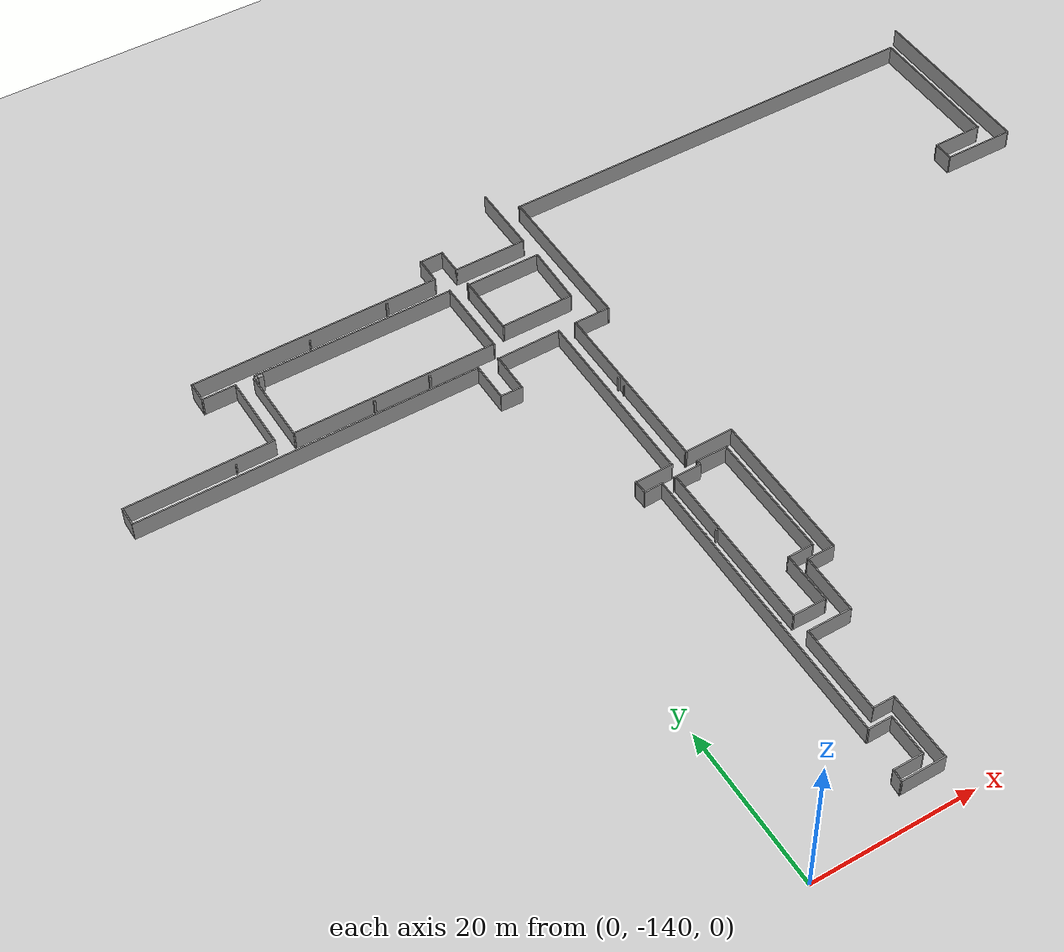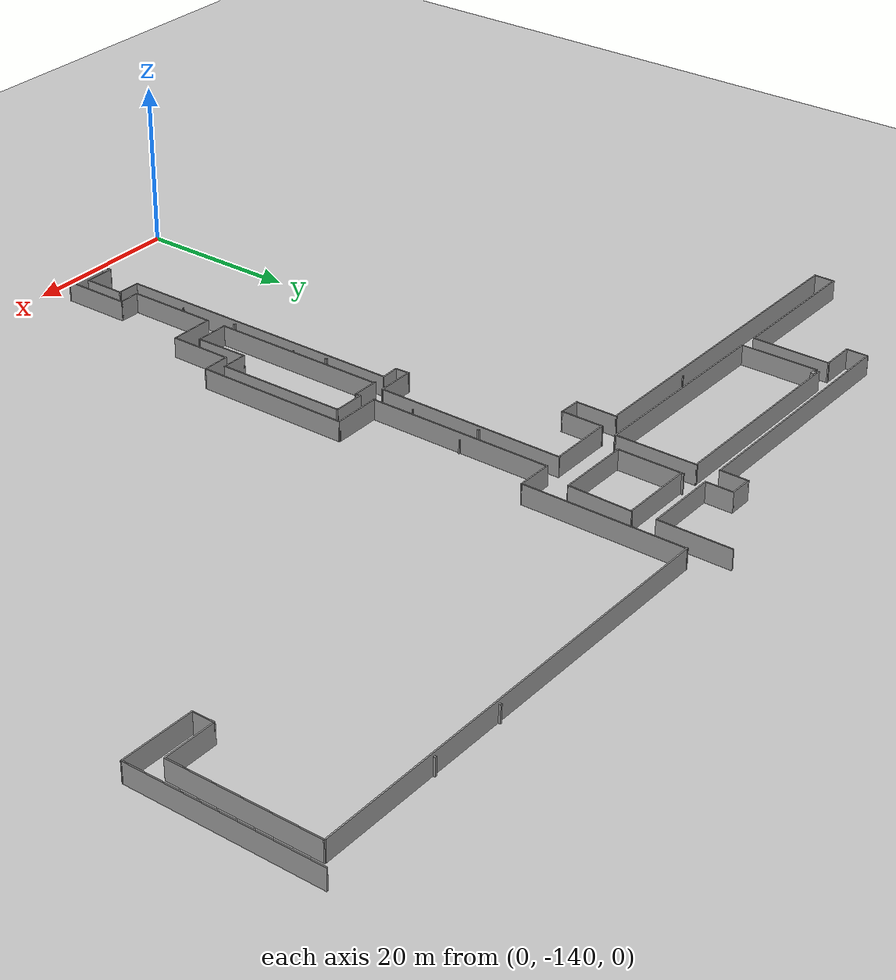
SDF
<sdf version="1.6">
 <world name="default">
  <model name="ground_plane">
   <static>1</static>
   <link name="link">
    <collision name="collision">
     <geometry><plane><normal>0 0 1</normal><size>100 100</size></plane></geometry>
     <surface><friction><ode><mu>100</mu><mu2>50</mu2></ode></friction></surface>
    </collision>
    <visual name="visual">
     <cast_shadows>0</cast_shadows>
     <geometry><plane><normal>0 0 1</normal><size>100 100</size></plane></geometry>
     <material>
      <script><uri>file://media/materials/scripts/gazebo.material</uri><name>Gazebo/Grey</name></script>
     </material>
    </visual>
   </link>
  </model>
  <model name="CMU">
   <pose>62.2844 43.535 0 0 -0 0</pose>
   <link name="Wall_233">
    <collision name="Wall_233_Collision">
     <geometry><box><size>23 0.15 2.5</size></box></geometry>
     <pose>0 0 1.25 0 -0 0</pose>
    </collision>
    <visual name="Wall_233_Visual">
     <pose>0 0 1.25 0 -0 0</pose>
     <geometry><box><size>23 0.15 2.5</size></box></geometry>
     <material>
      <script><uri>file://media/materials/scripts/gazebo.material</uri><name>Gazebo/Grey</name></script>
      <ambient>1 1 1 1</ambient>
     </material>
    </visual>
    <pose>18.6413 -100.449 0 0 0 -1.5708</pose>
   </link>
   <link name="Wall_234">
    <collision name="Wall_234_Collision">
     <geometry><box><size>9.04246 0.15 2.5</size></box></geometry>
     <pose>0 0 1.25 0 -0 0</pose>
    </collision>
    <visual name="Wall_234_Visual">
     <pose>0 0 1.25 0 -0 0</pose>
     <geometry><box><size>9.04246 0.15 2.5</size></box></geometry>
     <material>
      <script><uri>file://media/materials/scripts/gazebo.material</uri><name>Gazebo/Grey</name></script>
      <ambient>1 1 1 1</ambient>
     </material>
    </visual>
    <pose>14.1953 -111.833 0 0 -0 3.13255</pose>
   </link>
   <link name="Wall_235">
    <collision name="Wall_235_Collision">
     <geometry><box><size>2.75 0.15 2.5</size></box></geometry>
     <pose>0 0 1.25 0 -0 0</pose>
    </collision>
    <visual name="Wall_235_Visual">
     <pose>0 0 1.25 0 -0 0</pose>
     <geometry><box><size>2.75 0.15 2.5</size></box></geometry>
     <material>
      <script><uri>file://media/materials/scripts/gazebo.material</uri><name>Gazebo/Grey</name></script>
      <ambient>1 1 1 1</ambient>
     </material>
    </visual>
    <pose>9.74922 -110.493 0 0 -0 1.5708</pose>
   </link>
   <link name="Wall_236">
    <collision name="Wall_236_Collision">
     <geometry><box><size>6.5 0.15 2.5</size></box></geometry>
     <pose>0 0 1.25 0 -0 0</pose>
    </collision>
    <visual name="Wall_236_Visual">
     <pose>0 0 1.25 0 -0 0</pose>
     <geometry><box><size>6.5 0.15 2.5</size></box></geometry>
     <material>
      <script><uri>file://media/materials/scripts/gazebo.material</uri><name>Gazebo/Grey</name></script>
      <ambient>1 1 1 1</ambient>
     </material>
    </visual>
    <pose>12.9242 -109.193 0 0 -0 0</pose>
   </link>
   <link name="Wall_237">
    <collision name="Wall_237_Collision">
     <geometry><box><size>18 0.15 2.5</size></box></geometry>
     <pose>0 0 1.25 0 -0 0</pose>
    </collision>
    <visual name="Wall_237_Visual">
     <pose>0 0 1.25 0 -0 0</pose>
     <geometry><box><size>18 0.15 2.5</size></box></geometry>
     <material>
      <script><uri>file://media/materials/scripts/gazebo.material</uri><name>Gazebo/Grey</name></script>
      <ambient>1 1 1 1</ambient>
     </material>
    </visual>
    <pose>16.0992 -100.268 0 0 -0 1.5708</pose>
   </link>
   <link name="Wall_238">
    <collision name="Wall_238_Collision">
     <geometry><box><size>55.5 0.15 2.5</size></box></geometry>
     <pose>0 0 1.25 0 -0 0</pose>
    </collision>
    <visual name="Wall_238_Visual">
     <pose>0 0 1.25 0 -0 0</pose>
     <geometry><box><size>55.5 0.15 2.5</size></box></geometry>
     <material>
      <script><uri>file://media/materials/scripts/gazebo.material</uri><name>Gazebo/Grey</name></script>
      <ambient>1 1 1 1</ambient>
     </material>
    </visual>
    <pose>-11.5758 -91.3431 0 0 -0 3.14159</pose>
   </link>
   <link name="Wall_239">
    <collision name="Wall_239_Collision">
     <geometry><box><size>20 0.15 2.5</size></box></geometry>
     <pose>0 0 1.25 0 -0 0</pose>
    </collision>
    <visual name="Wall_239_Visual">
     <pose>0 0 1.25 0 -0 0</pose>
     <geometry><box><size>20 0.15 2.5</size></box></geometry>
     <material>
      <script><uri>file://media/materials/scripts/gazebo.material</uri><name>Gazebo/Grey</name></script>
      <ambient>1 1 1 1</ambient>
     </material>
    </visual>
    <pose>-39.1893 -101.268 0 0 0 -1.5708</pose>
   </link>
   <link name="Wall_240">
    <collision name="Wall_240_Collision">
     <geometry><box><size>4.6231 0.15 2.5</size></box></geometry>
     <pose>0 0 1.25 0 -0 0</pose>
    </collision>
    <visual name="Wall_240_Visual">
     <pose>0 0 1.25 0 -0 0</pose>
     <geometry><box><size>4.6231 0.15 2.5</size></box></geometry>
     <material>
      <script><uri>file://media/materials/scripts/gazebo.material</uri><name>Gazebo/Grey</name></script>
      <ambient>1 1 1 1</ambient>
     </material>
    </visual>
    <pose>-41.4258 -111.183 0 0 -0 3.13725</pose>
   </link>
   <link name="Wall_241">
    <collision name="Wall_241_Collision">
     <geometry><box><size>23 0.15 2.5</size></box></geometry>
     <pose>0 0 1.25 0 -0 0</pose>
    </collision>
    <visual name="Wall_241_Visual">
     <pose>0 0 1.25 0 -0 0</pose>
     <geometry><box><size>23 0.15 2.5</size></box></geometry>
     <material>
      <script><uri>file://media/materials/scripts/gazebo.material</uri><name>Gazebo/Grey</name></script>
      <ambient>1 1 1 1</ambient>
     </material>
    </visual>
    <pose>-43.6008 -122.66 0 0 0 -1.5708</pose>
   </link>
   <link name="Wall_242">
    <collision name="Wall_242_Collision">
     <geometry><box><size>6.18101 0.15 2.5</size></box></geometry>
     <pose>0 0 1.25 0 -0 0</pose>
    </collision>
    <visual name="Wall_242_Visual">
     <pose>0 0 1.25 0 -0 0</pose>
     <geometry><box><size>6.18101 0.15 2.5</size></box></geometry>
     <material>
      <script><uri>file://media/materials/scripts/gazebo.material</uri><name>Gazebo/Grey</name></script>
      <ambient>1 1 1 1</ambient>
     </material>
    </visual>
    <pose>-40.647 -133.993 0 0 -0 0.010202</pose>
   </link>
   <link name="Wall_243">
    <collision name="Wall_243_Collision">
     <geometry><box><size>19.25 0.15 2.5</size></box></geometry>
     <pose>0 0 1.25 0 -0 0</pose>
    </collision>
    <visual name="Wall_243_Visual">
     <pose>0 0 1.25 0 -0 0</pose>
     <geometry><box><size>19.25 0.15 2.5</size></box></geometry>
     <material>
      <script><uri>file://media/materials/scripts/gazebo.material</uri><name>Gazebo/Grey</name></script>
      <ambient>1 1 1 1</ambient>
     </material>
    </visual>
    <pose>-37.6316 -143.512 0 0 0 -1.5708</pose>
   </link>
   <link name="Wall_244">
    <collision name="Wall_244_Collision">
     <geometry><box><size>3.49625 0.15 2.5</size></box></geometry>
     <pose>0 0 1.25 0 -0 0</pose>
    </collision>
    <visual name="Wall_244_Visual">
     <pose>0 0 1.25 0 -0 0</pose>
     <geometry><box><size>3.49625 0.15 2.5</size></box></geometry>
     <material>
      <script><uri>file://media/materials/scripts/gazebo.material</uri><name>Gazebo/Grey</name></script>
      <ambient>1 1 1 1</ambient>
     </material>
    </visual>
    <pose>-39.3047 -153.062 0 0 -0 3.14159</pose>
   </link>
   <link name="Wall_245">
    <collision name="Wall_245_Collision">
     <geometry><box><size>7.75 0.15 2.5</size></box></geometry>
     <pose>0 0 1.25 0 -0 0</pose>
    </collision>
    <visual name="Wall_245_Visual">
     <pose>0 0 1.25 0 -0 0</pose>
     <geometry><box><size>7.75 0.15 2.5</size></box></geometry>
     <material>
      <script><uri>file://media/materials/scripts/gazebo.material</uri><name>Gazebo/Grey</name></script>
      <ambient>1 1 1 1</ambient>
     </material>
    </visual>
    <pose>-40.9427 -156.862 0 0 0 -1.5708</pose>
   </link>
   <link name="Wall_246">
    <collision name="Wall_246_Collision">
     <geometry><box><size>5.50375 0.15 2.5</size></box></geometry>
     <pose>0 0 1.25 0 -0 0</pose>
    </collision>
    <visual name="Wall_246_Visual">
     <pose>0 0 1.25 0 -0 0</pose>
     <geometry><box><size>5.50375 0.15 2.5</size></box></geometry>
     <material>
      <script><uri>file://media/materials/scripts/gazebo.material</uri><name>Gazebo/Grey</name></script>
      <ambient>1 1 1 1</ambient>
     </material>
    </visual>
    <pose>-43.6547 -160.662 0 0 -0 3.14159</pose>
   </link>
   <link name="Wall_247">
    <collision name="Wall_247_Collision">
     <geometry><box><size>11.25 0.15 2.5</size></box></geometry>
     <pose>0 0 1.25 0 -0 0</pose>
    </collision>
    <visual name="Wall_247_Visual">
     <pose>0 0 1.25 0 -0 0</pose>
     <geometry><box><size>11.25 0.15 2.5</size></box></geometry>
     <material>
      <script><uri>file://media/materials/scripts/gazebo.material</uri><name>Gazebo/Grey</name></script>
      <ambient>1 1 1 1</ambient>
     </material>
    </visual>
    <pose>-46.3316 -166.212 0 0 0 -1.5708</pose>
   </link>
   <link name="Wall_248">
    <collision name="Wall_248_Collision">
     <geometry><box><size>2.75 0.15 2.5</size></box></geometry>
     <pose>0 0 1.25 0 -0 0</pose>
    </collision>
    <visual name="Wall_248_Visual">
     <pose>0 0 1.25 0 -0 0</pose>
     <geometry><box><size>2.75 0.15 2.5</size></box></geometry>
     <material>
      <script><uri>file://media/materials/scripts/gazebo.material</uri><name>Gazebo/Grey</name></script>
      <ambient>1 1 1 1</ambient>
     </material>
    </visual>
    <pose>-45.0316 -171.762 0 0 -0 0</pose>
   </link>
   <link name="Wall_249">
    <collision name="Wall_249_Collision">
     <geometry><box><size>8.5 0.15 2.5</size></box></geometry>
     <pose>0 0 1.25 0 -0 0</pose>
    </collision>
    <visual name="Wall_249_Visual">
     <pose>0 0 1.25 0 -0 0</pose>
     <geometry><box><size>8.5 0.15 2.5</size></box></geometry>
     <material>
      <script><uri>file://media/materials/scripts/gazebo.material</uri><name>Gazebo/Grey</name></script>
      <ambient>1 1 1 1</ambient>
     </material>
    </visual>
    <pose>-43.7316 -175.937 0 0 0 -1.5708</pose>
   </link>
   <link name="Wall_250">
    <collision name="Wall_250_Collision">
     <geometry><box><size>5.5 0.15 2.5</size></box></geometry>
     <pose>0 0 1.25 0 -0 0</pose>
    </collision>
    <visual name="Wall_250_Visual">
     <pose>0 0 1.25 0 -0 0</pose>
     <geometry><box><size>5.5 0.15 2.5</size></box></geometry>
     <material>
      <script><uri>file://media/materials/scripts/gazebo.material</uri><name>Gazebo/Grey</name></script>
      <ambient>1 1 1 1</ambient>
     </material>
    </visual>
    <pose>-46.4066 -180.112 0 0 -0 3.14159</pose>
   </link>
   <link name="Wall_251">
    <collision name="Wall_251_Collision">
     <geometry><box><size>1.62148 0.15 2.5</size></box></geometry>
     <pose>0 0 1.25 0 -0 0</pose>
    </collision>
    <visual name="Wall_251_Visual">
     <pose>0 0 1.25 0 -0 0</pose>
     <geometry><box><size>1.62148 0.15 2.5</size></box></geometry>
     <material>
      <script><uri>file://media/materials/scripts/gazebo.material</uri><name>Gazebo/Grey</name></script>
      <ambient>1 1 1 1</ambient>
     </material>
    </visual>
    <pose>-49.0245 -179.379 0 0 -0 1.49314</pose>
   </link>
   <link name="Wall_252">
    <collision name="Wall_252_Collision">
     <geometry><box><size>3.75 0.15 2.5</size></box></geometry>
     <pose>0 0 1.25 0 -0 0</pose>
    </collision>
    <visual name="Wall_252_Visual">
     <pose>0 0 1.25 0 -0 0</pose>
     <geometry><box><size>3.75 0.15 2.5</size></box></geometry>
     <material>
      <script><uri>file://media/materials/scripts/gazebo.material</uri><name>Gazebo/Grey</name></script>
      <ambient>1 1 1 1</ambient>
     </material>
    </visual>
    <pose>-47.1675 -178.645 0 0 -0 0</pose>
   </link>
   <link name="Wall_253">
    <collision name="Wall_253_Collision">
     <geometry><box><size>5.25 0.15 2.5</size></box></geometry>
     <pose>0 0 1.25 0 -0 0</pose>
    </collision>
    <visual name="Wall_253_Visual">
     <pose>0 0 1.25 0 -0 0</pose>
     <geometry><box><size>5.25 0.15 2.5</size></box></geometry>
     <material>
      <script><uri>file://media/materials/scripts/gazebo.material</uri><name>Gazebo/Grey</name></script>
      <ambient>1 1 1 1</ambient>
     </material>
    </visual>
    <pose>-45.3675 -176.095 0 0 -0 1.5708</pose>
   </link>
   <link name="Wall_254">
    <collision name="Wall_254_Collision">
     <geometry><box><size>3 0.15 2.5</size></box></geometry>
     <pose>0 0 1.25 0 -0 0</pose>
    </collision>
    <visual name="Wall_254_Visual">
     <pose>0 0 1.25 0 -0 0</pose>
     <geometry><box><size>3 0.15 2.5</size></box></geometry>
     <material>
      <script><uri>file://media/materials/scripts/gazebo.material</uri><name>Gazebo/Grey</name></script>
      <ambient>1 1 1 1</ambient>
     </material>
    </visual>
    <pose>-46.7925 -173.545 0 0 -0 3.14159</pose>
   </link>
   <link name="Wall_255">
    <collision name="Wall_255_Collision">
     <geometry><box><size>37.3541 0.15 2.5</size></box></geometry>
     <pose>0 0 1.25 0 -0 0</pose>
    </collision>
    <visual name="Wall_255_Visual">
     <pose>0 0 1.25 0 -0 0</pose>
     <geometry><box><size>37.3541 0.15 2.5</size></box></geometry>
     <material>
      <script><uri>file://media/materials/scripts/gazebo.material</uri><name>Gazebo/Grey</name></script>
      <ambient>1 1 1 1</ambient>
     </material>
    </visual>
    <pose>-48.231 -154.943 0 0 -0 1.57153</pose>
   </link>
   <link name="Wall_256">
    <collision name="Wall_256_Collision">
     <geometry><box><size>2.44902 0.15 2.5</size></box></geometry>
     <pose>0 0 1.25 0 -0 0</pose>
    </collision>
    <visual name="Wall_256_Visual">
     <pose>0 0 1.25 0 -0 0</pose>
     <geometry><box><size>2.44902 0.15 2.5</size></box></geometry>
     <material>
      <script><uri>file://media/materials/scripts/gazebo.material</uri><name>Gazebo/Grey</name></script>
      <ambient>1 1 1 1</ambient>
     </material>
    </visual>
    <pose>-49.3525 -136.392 0 0 0 -3.09722</pose>
   </link>
   <link name="Wall_257">
    <collision name="Wall_257_Collision">
     <geometry><box><size>1.8321 0.15 2.5</size></box></geometry>
     <pose>0 0 1.25 0 -0 0</pose>
    </collision>
    <visual name="Wall_257_Visual">
     <pose>0 0 1.25 0 -0 0</pose>
     <geometry><box><size>1.8321 0.15 2.5</size></box></geometry>
     <material>
      <script><uri>file://media/materials/scripts/gazebo.material</uri><name>Gazebo/Grey</name></script>
      <ambient>1 1 1 1</ambient>
     </material>
    </visual>
    <pose>-50.5317 -135.541 0 0 -0 1.60738</pose>
   </link>
   <link name="Wall_258">
    <collision name="Wall_258_Collision">
     <geometry><box><size>4.83138 0.15 2.5</size></box></geometry>
     <pose>0 0 1.25 0 -0 0</pose>
    </collision>
    <visual name="Wall_258_Visual">
     <pose>0 0 1.25 0 -0 0</pose>
     <geometry><box><size>4.83138 0.15 2.5</size></box></geometry>
     <material>
      <script><uri>file://media/materials/scripts/gazebo.material</uri><name>Gazebo/Grey</name></script>
      <ambient>1 1 1 1</ambient>
     </material>
    </visual>
    <pose>-48.222 -134.731 0 0 -0 0.013143</pose>
   </link>
   <link name="Wall_259">
    <collision name="Wall_259_Collision">
     <geometry><box><size>23.6154 0.15 2.5</size></box></geometry>
     <pose>0 0 1.25 0 -0 0</pose>
    </collision>
    <visual name="Wall_259_Visual">
     <pose>0 0 1.25 0 -0 0</pose>
     <geometry><box><size>23.6154 0.15 2.5</size></box></geometry>
     <material>
      <script><uri>file://media/materials/scripts/gazebo.material</uri><name>Gazebo/Grey</name></script>
      <ambient>1 1 1 1</ambient>
     </material>
    </visual>
    <pose>-45.9122 -122.968 0 0 -0 1.56817</pose>
   </link>
   <link name="Wall_260">
    <collision name="Wall_260_Collision">
     <geometry><box><size>8.0851 0.15 2.5</size></box></geometry>
     <pose>0 0 1.25 0 -0 0</pose>
    </collision>
    <visual name="Wall_260_Visual">
     <pose>0 0 1.25 0 -0 0</pose>
     <geometry><box><size>8.0851 0.15 2.5</size></box></geometry>
     <material>
      <script><uri>file://media/materials/scripts/gazebo.material</uri><name>Gazebo/Grey</name></script>
      <ambient>1 1 1 1</ambient>
     </material>
    </visual>
    <pose>-49.9104 -111.266 0 0 0 -3.13384</pose>
   </link>
   <link name="Wall_261">
    <collision name="Wall_261_Collision">
     <geometry><box><size>5.25 0.15 2.5</size></box></geometry>
     <pose>0 0 1.25 0 -0 0</pose>
    </collision>
    <visual name="Wall_261_Visual">
     <pose>0 0 1.25 0 -0 0</pose>
     <geometry><box><size>5.25 0.15 2.5</size></box></geometry>
     <material>
      <script><uri>file://media/materials/scripts/gazebo.material</uri><name>Gazebo/Grey</name></script>
      <ambient>1 1 1 1</ambient>
     </material>
    </visual>
    <pose>-53.8779 -113.785 0 0 0 -1.5708</pose>
   </link>
   <link name="Wall_262">
    <collision name="Wall_262_Collision">
     <geometry><box><size>2.80058 0.15 2.5</size></box></geometry>
     <pose>0 0 1.25 0 -0 0</pose>
    </collision>
    <visual name="Wall_262_Visual">
     <pose>0 0 1.25 0 -0 0</pose>
     <geometry><box><size>2.80058 0.15 2.5</size></box></geometry>
     <material>
      <script><uri>file://media/materials/scripts/gazebo.material</uri><name>Gazebo/Grey</name></script>
      <ambient>1 1 1 1</ambient>
     </material>
    </visual>
    <pose>-55.2028 -116.366 0 0 -0 3.11838</pose>
   </link>
   <link name="Wall_263">
    <collision name="Wall_263_Collision">
     <geometry><box><size>5.1807 0.15 2.5</size></box></geometry>
     <pose>0 0 1.25 0 -0 0</pose>
    </collision>
    <visual name="Wall_263_Visual">
     <pose>0 0 1.25 0 -0 0</pose>
     <geometry><box><size>5.1807 0.15 2.5</size></box></geometry>
     <material>
      <script><uri>file://media/materials/scripts/gazebo.material</uri><name>Gazebo/Grey</name></script>
      <ambient>1 1 1 1</ambient>
     </material>
    </visual>
    <pose>-56.5277 -113.758 0 0 -0 1.5708</pose>
   </link>
   <link name="Wall_264">
    <collision name="Wall_264_Collision">
     <geometry><box><size>42.5039 0.15 2.5</size></box></geometry>
     <pose>0 0 1.25 0 -0 0</pose>
    </collision>
    <visual name="Wall_264_Visual">
     <pose>0 0 1.25 0 -0 0</pose>
     <geometry><box><size>42.5039 0.15 2.5</size></box></geometry>
     <material>
      <script><uri>file://media/materials/scripts/gazebo.material</uri><name>Gazebo/Grey</name></script>
      <ambient>1 1 1 1</ambient>
     </material>
    </visual>
    <pose>-77.7047 -111.274 0 0 -0 3.14014</pose>
   </link>
   <link name="Wall_265">
    <collision name="Wall_265_Collision">
     <geometry><box><size>2.5693 0.15 2.5</size></box></geometry>
     <pose>0 0 1.25 0 -0 0</pose>
    </collision>
    <visual name="Wall_265_Visual">
     <pose>0 0 1.25 0 -0 0</pose>
     <geometry><box><size>2.5693 0.15 2.5</size></box></geometry>
     <material>
      <script><uri>file://media/materials/scripts/gazebo.material</uri><name>Gazebo/Grey</name></script>
      <ambient>1 1 1 1</ambient>
     </material>
    </visual>
    <pose>-98.8816 -109.972 0 0 -0 1.5708</pose>
   </link>
   <link name="Wall_266">
    <collision name="Wall_266_Collision">
     <geometry><box><size>18.25 0.15 2.5</size></box></geometry>
     <pose>0 0 1.25 0 -0 0</pose>
    </collision>
    <visual name="Wall_266_Visual">
     <pose>0 0 1.25 0 -0 0</pose>
     <geometry><box><size>18.25 0.15 2.5</size></box></geometry>
     <material>
      <script><uri>file://media/materials/scripts/gazebo.material</uri><name>Gazebo/Grey</name></script>
      <ambient>1 1 1 1</ambient>
     </material>
    </visual>
    <pose>-89.8316 -108.762 0 0 -0 0</pose>
   </link>
   <link name="Wall_267">
    <collision name="Wall_267_Collision">
     <geometry><box><size>9.75 0.15 2.5</size></box></geometry>
     <pose>0 0 1.25 0 -0 0</pose>
    </collision>
    <visual name="Wall_267_Visual">
     <pose>0 0 1.25 0 -0 0</pose>
     <geometry><box><size>9.75 0.15 2.5</size></box></geometry>
     <material>
      <script><uri>file://media/materials/scripts/gazebo.material</uri><name>Gazebo/Grey</name></script>
      <ambient>1 1 1 1</ambient>
     </material>
    </visual>
    <pose>-80.7816 -103.962 0 0 -0 1.5708</pose>
   </link>
   <link name="Wall_268">
    <collision name="Wall_268_Collision">
     <geometry><box><size>4.25 0.15 2.5</size></box></geometry>
     <pose>0 0 1.25 0 -0 0</pose>
    </collision>
    <visual name="Wall_268_Visual">
     <pose>0 0 1.25 0 -0 0</pose>
     <geometry><box><size>4.25 0.15 2.5</size></box></geometry>
     <material>
      <script><uri>file://media/materials/scripts/gazebo.material</uri><name>Gazebo/Grey</name></script>
      <ambient>1 1 1 1</ambient>
     </material>
    </visual>
    <pose>-82.8316 -99.1621 0 0 -0 3.14159</pose>
   </link>
   <link name="Wall_269">
    <collision name="Wall_269_Collision">
     <geometry><box><size>2.75 0.15 2.5</size></box></geometry>
     <pose>0 0 1.25 0 -0 0</pose>
    </collision>
    <visual name="Wall_269_Visual">
     <pose>0 0 1.25 0 -0 0</pose>
     <geometry><box><size>2.75 0.15 2.5</size></box></geometry>
     <material>
      <script><uri>file://media/materials/scripts/gazebo.material</uri><name>Gazebo/Grey</name></script>
      <ambient>1 1 1 1</ambient>
     </material>
    </visual>
    <pose>-84.8816 -97.8621 0 0 -0 1.5708</pose>
   </link>
   <link name="Wall_270">
    <collision name="Wall_270_Collision">
     <geometry><box><size>31.25 0.15 2.5</size></box></geometry>
     <pose>0 0 1.25 0 -0 0</pose>
    </collision>
    <visual name="Wall_270_Visual">
     <pose>0 0 1.25 0 -0 0</pose>
     <geometry><box><size>31.25 0.15 2.5</size></box></geometry>
     <material>
      <script><uri>file://media/materials/scripts/gazebo.material</uri><name>Gazebo/Grey</name></script>
      <ambient>1 1 1 1</ambient>
     </material>
    </visual>
    <pose>-69.3316 -96.5621 0 0 -0 0</pose>
   </link>
   <link name="Wall_271">
    <collision name="Wall_271_Collision">
     <geometry><box><size>3.5 0.15 2.5</size></box></geometry>
     <pose>0 0 1.25 0 -0 0</pose>
    </collision>
    <visual name="Wall_271_Visual">
     <pose>0 0 1.25 0 -0 0</pose>
     <geometry><box><size>3.5 0.15 2.5</size></box></geometry>
     <material>
      <script><uri>file://media/materials/scripts/gazebo.material</uri><name>Gazebo/Grey</name></script>
      <ambient>1 1 1 1</ambient>
     </material>
    </visual>
    <pose>-53.7816 -94.8871 0 0 -0 1.5708</pose>
   </link>
   <link name="Wall_272">
    <collision name="Wall_272_Collision">
     <geometry><box><size>3 0.15 2.5</size></box></geometry>
     <pose>0 0 1.25 0 -0 0</pose>
    </collision>
    <visual name="Wall_272_Visual">
     <pose>0 0 1.25 0 -0 0</pose>
     <geometry><box><size>3 0.15 2.5</size></box></geometry>
     <material>
      <script><uri>file://media/materials/scripts/gazebo.material</uri><name>Gazebo/Grey</name></script>
      <ambient>1 1 1 1</ambient>
     </material>
    </visual>
    <pose>-52.3566 -93.2121 0 0 -0 0</pose>
   </link>
   <link name="Wall_273">
    <collision name="Wall_273_Collision">
     <geometry><box><size>3.5 0.15 2.5</size></box></geometry>
     <pose>0 0 1.25 0 -0 0</pose>
    </collision>
    <visual name="Wall_273_Visual">
     <pose>0 0 1.25 0 -0 0</pose>
     <geometry><box><size>3.5 0.15 2.5</size></box></geometry>
     <material>
      <script><uri>file://media/materials/scripts/gazebo.material</uri><name>Gazebo/Grey</name></script>
      <ambient>1 1 1 1</ambient>
     </material>
    </visual>
    <pose>-50.9316 -94.8871 0 0 0 -1.5708</pose>
   </link>
   <link name="Wall_274">
    <collision name="Wall_274_Collision">
     <geometry><box><size>9.25 0.15 2.5</size></box></geometry>
     <pose>0 0 1.25 0 -0 0</pose>
    </collision>
    <visual name="Wall_274_Visual">
     <pose>0 0 1.25 0 -0 0</pose>
     <geometry><box><size>9.25 0.15 2.5</size></box></geometry>
     <material>
      <script><uri>file://media/materials/scripts/gazebo.material</uri><name>Gazebo/Grey</name></script>
      <ambient>1 1 1 1</ambient>
     </material>
    </visual>
    <pose>-46.3816 -96.5621 0 0 -0 0</pose>
   </link>
   <link name="Wall_275">
    <collision name="Wall_275_Collision">
     <geometry><box><size>9 0.15 2.5</size></box></geometry>
     <pose>0 0 1.25 0 -0 0</pose>
    </collision>
    <visual name="Wall_275_Visual">
     <pose>0 0 1.25 0 -0 0</pose>
     <geometry><box><size>9 0.15 2.5</size></box></geometry>
     <material>
      <script><uri>file://media/materials/scripts/gazebo.material</uri><name>Gazebo/Grey</name></script>
      <ambient>1 1 1 1</ambient>
     </material>
    </visual>
    <pose>-41.8316 -92.1371 0 0 -0 1.5708</pose>
   </link>
   <link name="Wall_277">
    <collision name="Wall_277_Collision">
     <geometry><box><size>9.74631 0.15 2.5</size></box></geometry>
     <pose>0 0 1.25 0 -0 0</pose>
    </collision>
    <visual name="Wall_277_Visual">
     <pose>0 0 1.25 0 -0 0</pose>
     <geometry><box><size>9.74631 0.15 2.5</size></box></geometry>
     <material>
      <script><uri>file://media/materials/scripts/gazebo.material</uri><name>Gazebo/Grey</name></script>
      <ambient>1 1 1 1</ambient>
     </material>
    </visual>
    <pose>-78.5714 -104.211 0 0 0 -1.56438</pose>
   </link>
   <link name="Wall_278">
    <collision name="Wall_278_Collision">
     <geometry><box><size>25.5042 0.15 2.5</size></box></geometry>
     <pose>0 0 1.25 0 -0 0</pose>
    </collision>
    <visual name="Wall_278_Visual">
     <pose>0 0 1.25 0 -0 0</pose>
     <geometry><box><size>25.5042 0.15 2.5</size></box></geometry>
     <material>
      <script><uri>file://media/materials/scripts/gazebo.material</uri><name>Gazebo/Grey</name></script>
      <ambient>1 1 1 1</ambient>
     </material>
    </visual>
    <pose>-65.8637 -109.009 0 0 0 -0.004853</pose>
   </link>
   <link name="Wall_279">
    <collision name="Wall_279_Collision">
     <geometry><box><size>10.2346 0.15 2.5</size></box></geometry>
     <pose>0 0 1.25 0 -0 0</pose>
    </collision>
    <visual name="Wall_279_Visual">
     <pose>0 0 1.25 0 -0 0</pose>
     <geometry><box><size>10.2346 0.15 2.5</size></box></geometry>
     <material>
      <script><uri>file://media/materials/scripts/gazebo.material</uri><name>Gazebo/Grey</name></script>
      <ambient>1 1 1 1</ambient>
     </material>
    </visual>
    <pose>-53.2175 -104.09 0 0 -0 1.5769</pose>
   </link>
   <link name="Wall_280">
    <collision name="Wall_280_Collision">
     <geometry><box><size>25.254 0.15 2.5</size></box></geometry>
     <pose>0 0 1.25 0 -0 0</pose>
    </collision>
    <visual name="Wall_280_Visual">
     <pose>0 0 1.25 0 -0 0</pose>
     <geometry><box><size>25.254 0.15 2.5</size></box></geometry>
     <material>
      <script><uri>file://media/materials/scripts/gazebo.material</uri><name>Gazebo/Grey</name></script>
      <ambient>1 1 1 1</ambient>
     </material>
    </visual>
    <pose>-65.8002 -99.0785 0 0 -0 3.13914</pose>
   </link>
   <link name="Wall_282">
    <collision name="Wall_282_Collision">
     <geometry><box><size>8.24222 0.15 2.5</size></box></geometry>
     <pose>0 0 1.25 0 -0 0</pose>
    </collision>
    <visual name="Wall_282_Visual">
     <pose>0 0 1.25 0 -0 0</pose>
     <geometry><box><size>8.24222 0.15 2.5</size></box></geometry>
     <material>
      <script><uri>file://media/materials/scripts/gazebo.material</uri><name>Gazebo/Grey</name></script>
      <ambient>1 1 1 1</ambient>
     </material>
    </visual>
    <pose>-50.8969 -103.243 0 0 0 -1.5708</pose>
   </link>
   <link name="Wall_283">
    <collision name="Wall_283_Collision">
     <geometry><box><size>9.25 0.15 2.5</size></box></geometry>
     <pose>0 0 1.25 0 -0 0</pose>
    </collision>
    <visual name="Wall_283_Visual">
     <pose>0 0 1.25 0 -0 0</pose>
     <geometry><box><size>9.25 0.15 2.5</size></box></geometry>
     <material>
      <script><uri>file://media/materials/scripts/gazebo.material</uri><name>Gazebo/Grey</name></script>
      <ambient>1 1 1 1</ambient>
     </material>
    </visual>
    <pose>-46.3468 -107.227 0 0 -0 0</pose>
   </link>
   <link name="Wall_284">
    <collision name="Wall_284_Collision">
     <geometry><box><size>7.93284 0.15 2.5</size></box></geometry>
     <pose>0 0 1.25 0 -0 0</pose>
    </collision>
    <visual name="Wall_284_Visual">
     <pose>0 0 1.25 0 -0 0</pose>
     <geometry><box><size>7.93284 0.15 2.5</size></box></geometry>
     <material>
      <script><uri>file://media/materials/scripts/gazebo.material</uri><name>Gazebo/Grey</name></script>
      <ambient>1 1 1 1</ambient>
     </material>
    </visual>
    <pose>-41.7054 -103.337 0 0 -0 1.54729</pose>
   </link>
   <link name="Wall_285">
    <collision name="Wall_285_Collision">
     <geometry><box><size>9.25 0.15 2.5</size></box></geometry>
     <pose>0 0 1.25 0 -0 0</pose>
    </collision>
    <visual name="Wall_285_Visual">
     <pose>0 0 1.25 0 -0 0</pose>
     <geometry><box><size>9.25 0.15 2.5</size></box></geometry>
     <material>
      <script><uri>file://media/materials/scripts/gazebo.material</uri><name>Gazebo/Grey</name></script>
      <ambient>1 1 1 1</ambient>
     </material>
    </visual>
    <pose>-46.3804 -99.4466 0 0 -0 3.14159</pose>
   </link>
   <link name="Wall_287">
    <collision name="Wall_287_Collision">
     <geometry><box><size>21.9925 0.15 2.5</size></box></geometry>
     <pose>0 0 1.25 0 -0 0</pose>
    </collision>
    <visual name="Wall_287_Visual">
     <pose>0 0 1.25 0 -0 0</pose>
     <geometry><box><size>21.9925 0.15 2.5</size></box></geometry>
     <material>
      <script><uri>file://media/materials/scripts/gazebo.material</uri><name>Gazebo/Grey</name></script>
      <ambient>1 1 1 1</ambient>
     </material>
    </visual>
    <pose>-46.4853 -147.345 0 0 0 -1.56919</pose>
   </link>
   <link name="Wall_288">
    <collision name="Wall_288_Collision">
     <geometry><box><size>4.21857 0.15 2.5</size></box></geometry>
     <pose>0 0 1.25 0 -0 0</pose>
    </collision>
    <visual name="Wall_288_Visual">
     <pose>0 0 1.25 0 -0 0</pose>
     <geometry><box><size>4.21857 0.15 2.5</size></box></geometry>
     <material>
      <script><uri>file://media/materials/scripts/gazebo.material</uri><name>Gazebo/Grey</name></script>
      <ambient>1 1 1 1</ambient>
     </material>
    </visual>
    <pose>-44.4335 -158.249 0 0 0 -0.008646</pose>
   </link>
   <link name="Wall_289">
    <collision name="Wall_289_Collision">
     <geometry><box><size>6.67921 0.15 2.5</size></box></geometry>
     <pose>0 0 1.25 0 -0 0</pose>
    </collision>
    <visual name="Wall_289_Visual">
     <pose>0 0 1.25 0 -0 0</pose>
     <geometry><box><size>6.67921 0.15 2.5</size></box></geometry>
     <material>
      <script><uri>file://media/materials/scripts/gazebo.material</uri><name>Gazebo/Grey</name></script>
      <ambient>1 1 1 1</ambient>
     </material>
    </visual>
    <pose>-42.4582 -155.038 0 0 -0 1.58889</pose>
   </link>
   <link name="Wall_290">
    <collision name="Wall_290_Collision">
     <geometry><box><size>3.25 0.15 2.5</size></box></geometry>
     <pose>0 0 1.25 0 -0 0</pose>
    </collision>
    <visual name="Wall_290_Visual">
     <pose>0 0 1.25 0 -0 0</pose>
     <geometry><box><size>3.25 0.15 2.5</size></box></geometry>
     <material>
      <script><uri>file://media/materials/scripts/gazebo.material</uri><name>Gazebo/Grey</name></script>
      <ambient>1 1 1 1</ambient>
     </material>
    </visual>
    <pose>-40.9673 -151.773 0 0 -0 0</pose>
   </link>
   <link name="Wall_291">
    <collision name="Wall_291_Collision">
     <geometry><box><size>16.18 0.15 2.5</size></box></geometry>
     <pose>0 0 1.25 0 -0 0</pose>
    </collision>
    <visual name="Wall_291_Visual">
     <pose>0 0 1.25 0 -0 0</pose>
     <geometry><box><size>16.18 0.15 2.5</size></box></geometry>
     <material>
      <script><uri>file://media/materials/scripts/gazebo.material</uri><name>Gazebo/Grey</name></script>
      <ambient>1 1 1 1</ambient>
     </material>
    </visual>
    <pose>-39.4525 -143.759 0 0 -0 1.57957</pose>
   </link>
   <link name="Wall_292">
    <collision name="Wall_292_Collision">
     <geometry><box><size>4 0.15 2.5</size></box></geometry>
     <pose>0 0 1.25 0 -0 0</pose>
    </collision>
    <visual name="Wall_292_Visual">
     <pose>0 0 1.25 0 -0 0</pose>
     <geometry><box><size>4 0.15 2.5</size></box></geometry>
     <material>
      <script><uri>file://media/materials/scripts/gazebo.material</uri><name>Gazebo/Grey</name></script>
      <ambient>1 1 1 1</ambient>
     </material>
    </visual>
    <pose>-41.3863 -135.744 0 0 -0 3.14159</pose>
   </link>
   <link name="Wall_294">
    <collision name="Wall_294_Collision">
     <geometry><box><size>0.75 0.15 2.5</size></box></geometry>
     <pose>0 0 1.25 0 -0 0</pose>
    </collision>
    <visual name="Wall_294_Visual">
     <pose>0 0 1.25 0 -0 0</pose>
     <geometry><box><size>0.75 0.15 2.5</size></box></geometry>
     <material>
      <script><uri>file://media/materials/scripts/gazebo.material</uri><name>Gazebo/Grey</name></script>
      <ambient>1 1 1 1</ambient>
     </material>
    </visual>
    <pose>-43.3113 -136.044 0 0 0 -1.5708</pose>
   </link>
   <link name="Wall_295">
    <collision name="Wall_295_Collision">
     <geometry><box><size>3.5 0.15 2.5</size></box></geometry>
     <pose>0 0 1.25 0 -0 0</pose>
    </collision>
    <visual name="Wall_295_Visual">
     <pose>0 0 1.25 0 -0 0</pose>
     <geometry><box><size>3.5 0.15 2.5</size></box></geometry>
     <material>
      <script><uri>file://media/materials/scripts/gazebo.material</uri><name>Gazebo/Grey</name></script>
      <ambient>1 1 1 1</ambient>
     </material>
    </visual>
    <pose>-44.9863 -136.344 0 0 -0 3.14159</pose>
   </link>
   <static>1</static>
  </model>
  <model name="unit_box_1_clone">
   <pose>-16.0452 -55.7918 1.17383 0 -2e-06 0.036111</pose>
   <link name="link">
    <inertial>
     <mass>1</mass>
     <inertia>
      <ixx>0.166667</ixx>
      <ixy>0</ixy>
      <ixz>0</ixz>
      <iyy>0.166667</iyy>
      <iyz>0</iyz>
      <izz>0.166667</izz>
     </inertia>
    </inertial>
    <collision name="collision"><geometry><box><size>0.381696 0.36836 2.34767</size></box></geometry></collision>
    <visual name="visual">
     <geometry><box><size>0.381696 0.36836 2.34767</size></box></geometry>
     <material>
      <script><name>Gazebo/Grey</name><uri>file://media/materials/scripts/gazebo.material</uri></script>
     </material>
    </visual>
   </link>
  </model>
  <model name="unit_box_0_clone_6">
   <pose>-7.39094 -67.6191 0.838711 1e-05 1.2e-05 -0.001486</pose>
   <link name="link">
    <inertial>
     <mass>1</mass>
     <inertia>
      <ixx>0.166667</ixx>
      <ixy>0</ixy>
      <ixz>0</ixz>
      <iyy>0.166667</iyy>
      <iyz>0</iyz>
      <izz>0.166667</izz>
     </inertia>
    </inertial>
    <collision name="collision"><geometry><box><size>0.151709 0.113011 1.67742</size></box></geometry></collision>
    <visual name="visual">
     <geometry><box><size>0.151709 0.113011 1.67742</size></box></geometry>
     <material>
      <script><name>Gazebo/Grey</name><uri>file://media/materials/scripts/gazebo.material</uri></script>
     </material>
    </visual>
   </link>
  </model>
  <model name="unit_box_0_clone_7">
   <pose>-8.01052 -53.1839 0.83871 -1e-06 -0 -0.010573</pose>
   <link name="link">
    <inertial>
     <mass>1</mass>
     <inertia>
      <ixx>0.166667</ixx>
      <ixy>0</ixy>
      <ixz>0</ixz>
      <iyy>0.166667</iyy>
      <iyz>0</iyz>
      <izz>0.166667</izz>
     </inertia>
    </inertial>
    <collision name="collision"><geometry><box><size>0.151709 0.113011 1.67742</size></box></geometry></collision>
    <visual name="visual">
     <geometry><box><size>0.151709 0.113011 1.67742</size></box></geometry>
     <material>
      <script><name>Gazebo/Grey</name><uri>file://media/materials/scripts/gazebo.material</uri></script>
     </material>
    </visual>
   </link>
  </model>
  <model name="unit_box_0_clone_8">
   <pose>-23.3726 -65.392 0.838711 9e-06 -4e-06 -0.009478</pose>
   <link name="link">
    <inertial>
     <mass>1</mass>
     <inertia>
      <ixx>0.166667</ixx>
      <ixy>0</ixy>
      <ixz>0</ixz>
      <iyy>0.166667</iyy>
      <iyz>0</iyz>
      <izz>0.166667</izz>
     </inertia>
    </inertial>
    <collision name="collision"><geometry><box><size>0.151709 0.113011 1.67742</size></box></geometry></collision>
    <visual name="visual">
     <geometry><box><size>0.151709 0.113011 1.67742</size></box></geometry>
     <material>
      <script><name>Gazebo/Grey</name><uri>file://media/materials/scripts/gazebo.material</uri></script>
     </material>
    </visual>
   </link>
  </model>
  <model name="unit_box_0_clone_9">
   <pose>18.8345 -78.8141 0.83871 1e-06 -1e-06 4.9e-05</pose>
   <link name="link">
    <inertial>
     <mass>1</mass>
     <inertia>
      <ixx>0.166667</ixx>
      <ixy>0</ixy>
      <ixz>0</ixz>
      <iyy>0.166667</iyy>
      <iyz>0</iyz>
      <izz>0.166667</izz>
     </inertia>
    </inertial>
    <collision name="collision"><geometry><box><size>0.151709 0.113011 1.67742</size></box></geometry></collision>
    <visual name="visual">
     <geometry><box><size>0.151709 0.113011 1.67742</size></box></geometry>
     <material>
      <script><name>Gazebo/Grey</name><uri>file://media/materials/scripts/gazebo.material</uri></script>
     </material>
    </visual>
   </link>
  </model>
  <model name="unit_box_0_clone_10">
   <pose>18.5326 -78.1814 0.83871 -0 -1e-06 -0.001204</pose>
   <link name="link">
    <inertial>
     <mass>1</mass>
     <inertia>
      <ixx>0.166667</ixx>
      <ixy>0</ixy>
      <ixz>0</ixz>
      <iyy>0.166667</iyy>
      <iyz>0</iyz>
      <izz>0.166667</izz>
     </inertia>
    </inertial>
    <collision name="collision"><geometry><box><size>0.151709 0.113011 1.67742</size></box></geometry></collision>
    <visual name="visual">
     <geometry><box><size>0.151709 0.113011 1.67742</size></box></geometry>
     <material>
      <script><name>Gazebo/Grey</name><uri>file://media/materials/scripts/gazebo.material</uri></script>
     </material>
    </visual>
   </link>
  </model>
  <model name="unit_box_0_clone_11">
   <pose>16.6929 -86.7333 0.83871 -1e-06 -0 -0.010533</pose>
   <link name="link">
    <inertial>
     <mass>1</mass>
     <inertia>
      <ixx>0.166667</ixx>
      <ixy>0</ixy>
      <ixz>0</ixz>
      <iyy>0.166667</iyy>
      <iyz>0</iyz>
      <izz>0.166667</izz>
     </inertia>
    </inertial>
    <collision name="collision"><geometry><box><size>0.151709 0.113011 1.67742</size></box></geometry></collision>
    <visual name="visual">
     <geometry><box><size>0.151709 0.113011 1.67742</size></box></geometry>
     <material>
      <script><name>Gazebo/Grey</name><uri>file://media/materials/scripts/gazebo.material</uri></script>
     </material>
    </visual>
   </link>
  </model>
  <model name="unit_box_0_clone_12">
   <pose>14.3739 -105.663 0.83871 1e-06 2e-06 -0.010157</pose>
   <link name="link">
    <inertial>
     <mass>1</mass>
     <inertia>
      <ixx>0.166667</ixx>
      <ixy>0</ixy>
      <ixz>0</ixz>
      <iyy>0.166667</iyy>
      <iyz>0</iyz>
      <izz>0.166667</izz>
     </inertia>
    </inertial>
    <collision name="collision"><geometry><box><size>0.151709 0.113011 1.67742</size></box></geometry></collision>
    <visual name="visual">
     <geometry><box><size>0.151709 0.113011 1.67742</size></box></geometry>
     <material>
      <script><name>Gazebo/Grey</name><uri>file://media/materials/scripts/gazebo.material</uri></script>
     </material>
    </visual>
   </link>
  </model>
  <model name="unit_box_0_clone_13">
   <pose>14.2124 -122.529 0.83871 2e-06 -0 0.000734</pose>
   <link name="link">
    <inertial>
     <mass>1</mass>
     <inertia>
      <ixx>0.166667</ixx>
      <ixy>0</ixy>
      <ixz>0</ixz>
      <iyy>0.166667</iyy>
      <iyz>0</iyz>
      <izz>0.166667</izz>
     </inertia>
    </inertial>
    <collision name="collision"><geometry><box><size>0.151709 0.113011 1.67742</size></box></geometry></collision>
    <visual name="visual">
     <geometry><box><size>0.151709 0.113011 1.67742</size></box></geometry>
     <material>
      <script><name>Gazebo/Grey</name><uri>file://media/materials/scripts/gazebo.material</uri></script>
     </material>
    </visual>
   </link>
  </model>
  <model name="unit_box_0_clone_clone_0_clone">
   <pose>-15.5386 -55.8686 1.25088 -2e-06 -6e-06 1.54286</pose>
   <link name="link">
    <inertial>
     <mass>1</mass>
     <inertia>
      <ixx>0.166667</ixx>
      <ixy>0</ixy>
      <ixz>0</ixz>
      <iyy>0.166667</iyy>
      <iyz>0</iyz>
      <izz>0.166667</izz>
     </inertia>
    </inertial>
    <collision name="collision"><geometry><box><size>0.432377 0.609792 2.50176</size></box></geometry></collision>
    <visual name="visual">
     <geometry><box><size>0.432377 0.609792 2.50176</size></box></geometry>
     <material>
      <script><name>Gazebo/Grey</name><uri>file://media/materials/scripts/gazebo.material</uri></script>
     </material>
    </visual>
   </link>
  </model>
  <model name="unit_box_0_clone_clone_25">
   <pose>1.98716 -53.2247 1.07512 2e-06 1.5e-05 6.3e-05</pose>
   <link name="link">
    <inertial>
     <mass>1</mass>
     <inertia>
      <ixx>0.166667</ixx>
      <ixy>0</ixy>
      <ixz>0</ixz>
      <iyy>0.166667</iyy>
      <iyz>0</iyz>
      <izz>0.166667</izz>
     </inertia>
    </inertial>
    <collision name="collision"><geometry><box><size>0.230557 0.245067 2.15023</size></box></geometry></collision>
    <visual name="visual">
     <geometry><box><size>0.230557 0.245067 2.15023</size></box></geometry>
     <material>
      <script><name>Gazebo/Grey</name><uri>file://media/materials/scripts/gazebo.material</uri></script>
     </material>
    </visual>
   </link>
  </model>
  <model name="unit_box_0_clone_clone_26">
   <pose>0.645796 -65.6921 1.07512 -7e-06 1e-06 -0.004677</pose>
   <link name="link">
    <inertial>
     <mass>1</mass>
     <inertia>
      <ixx>0.166667</ixx>
      <ixy>0</ixy>
      <ixz>0</ixz>
      <iyy>0.166667</iyy>
      <iyz>0</iyz>
      <izz>0.166667</izz>
     </inertia>
    </inertial>
    <collision name="collision"><geometry><box><size>0.230557 0.245067 2.15023</size></box></geometry></collision>
    <visual name="visual">
     <geometry><box><size>0.230557 0.245067 2.15023</size></box></geometry>
     <material>
      <script><name>Gazebo/Grey</name><uri>file://media/materials/scripts/gazebo.material</uri></script>
     </material>
    </visual>
   </link>
  </model>
  <model name="unit_box_0_clone_clone_27">
   <pose>-6.38516 -65.658 1.07512 -3e-06 -3e-06 -0.005065</pose>
   <link name="link">
    <inertial>
     <mass>1</mass>
     <inertia>
      <ixx>0.166667</ixx>
      <ixy>0</ixy>
      <ixz>0</ixz>
      <iyy>0.166667</iyy>
      <iyz>0</iyz>
      <izz>0.166667</izz>
     </inertia>
    </inertial>
    <collision name="collision"><geometry><box><size>0.230557 0.245067 2.15023</size></box></geometry></collision>
    <visual name="visual">
     <geometry><box><size>0.230557 0.245067 2.15023</size></box></geometry>
     <material>
      <script><name>Gazebo/Grey</name><uri>file://media/materials/scripts/gazebo.material</uri></script>
     </material>
    </visual>
   </link>
  </model>
  <model name="unit_box_0_clone_clone_5_clone_1">
   <pose>54.2023 -47.6105 1.07512 -3e-06 -1e-06 -1.4e-05</pose>
   <link name="link">
    <inertial>
     <mass>1</mass>
     <inertia>
      <ixx>0.166667</ixx>
      <ixy>0</ixy>
      <ixz>0</ixz>
      <iyy>0.166667</iyy>
      <iyz>0</iyz>
      <izz>0.166667</izz>
     </inertia>
    </inertial>
    <collision name="collision"><geometry><box><size>0.230557 0.245067 2.15023</size></box></geometry></collision>
    <visual name="visual">
     <geometry><box><size>0.230557 0.245067 2.15023</size></box></geometry>
     <material>
      <script><name>Gazebo/Grey</name><uri>file://media/materials/scripts/gazebo.material</uri></script>
     </material>
    </visual>
   </link>
  </model>
  <model name="unit_box_0_clone_clone_5_clone_4">
   <pose>63.7508 -47.6105 1.07512 5e-06 0 -0.000427</pose>
   <link name="link">
    <inertial>
     <mass>1</mass>
     <inertia>
      <ixx>0.166667</ixx>
      <ixy>0</ixy>
      <ixz>0</ixz>
      <iyy>0.166667</iyy>
      <iyz>0</iyz>
      <izz>0.166667</izz>
     </inertia>
    </inertial>
    <collision name="collision"><geometry><box><size>0.230557 0.245067 2.15023</size></box></geometry></collision>
    <visual name="visual">
     <geometry><box><size>0.230557 0.245067 2.15023</size></box></geometry>
     <material>
      <script><name>Gazebo/Grey</name><uri>file://media/materials/scripts/gazebo.material</uri></script>
     </material>
    </visual>
   </link>
  </model>
  <model name="unit_box_0_clone_clone_5_clone_11">
   <pose>16.5662 -78.0067 1.07512 0 1e-06 -0.002612</pose>
   <link name="link">
    <inertial>
     <mass>1</mass>
     <inertia>
      <ixx>0.166667</ixx>
      <ixy>0</ixy>
      <ixz>0</ixz>
      <iyy>0.166667</iyy>
      <iyz>0</iyz>
      <izz>0.166667</izz>
     </inertia>
    </inertial>
    <collision name="collision"><geometry><box><size>0.230557 0.245067 2.15023</size></box></geometry></collision>
    <visual name="visual">
     <geometry><box><size>0.230557 0.245067 2.15023</size></box></geometry>
     <material>
      <script><name>Gazebo/Grey</name><uri>file://media/materials/scripts/gazebo.material</uri></script>
     </material>
    </visual>
   </link>
  </model>
  <model name="unit_box_0_clone_clone_5_clone_12">
   <pose>18.4933 -77.1269 1.07512 -5e-06 1e-06 -0.000212</pose>
   <link name="link">
    <inertial>
     <mass>1</mass>
     <inertia>
      <ixx>0.166667</ixx>
      <ixy>0</ixy>
      <ixz>0</ixz>
      <iyy>0.166667</iyy>
      <iyz>0</iyz>
      <izz>0.166667</izz>
     </inertia>
    </inertial>
    <collision name="collision"><geometry><box><size>0.230557 0.245067 2.15023</size></box></geometry></collision>
    <visual name="visual">
     <geometry><box><size>0.230557 0.245067 2.15023</size></box></geometry>
     <material>
      <script><name>Gazebo/Grey</name><uri>file://media/materials/scripts/gazebo.material</uri></script>
     </material>
    </visual>
   </link>
  </model>
  <model name="unit_box_0_clone_clone_5_clone_13">
   <pose>14.236 -100.904 1.07512 -1e-06 1.2e-05 0.000667</pose>
   <link name="link">
    <inertial>
     <mass>1</mass>
     <inertia>
      <ixx>0.166667</ixx>
      <ixy>0</ixy>
      <ixz>0</ixz>
      <iyy>0.166667</iyy>
      <iyz>0</iyz>
      <izz>0.166667</izz>
     </inertia>
    </inertial>
    <collision name="collision"><geometry><box><size>0.230557 0.245067 2.15023</size></box></geometry></collision>
    <visual name="visual">
     <geometry><box><size>0.230557 0.245067 2.15023</size></box></geometry>
     <material>
      <script><name>Gazebo/Grey</name><uri>file://media/materials/scripts/gazebo.material</uri></script>
     </material>
    </visual>
   </link>
  </model>
  <model name="unit_box_0_clone_clone_5_clone_14">
   <pose>15.6042 -100.965 1.07512 -4e-06 -6e-06 0.001377</pose>
   <link name="link">
    <inertial>
     <mass>1</mass>
     <inertia>
      <ixx>0.166667</ixx>
      <ixy>0</ixy>
      <ixz>0</ixz>
      <iyy>0.166667</iyy>
      <iyz>0</iyz>
      <izz>0.166667</izz>
     </inertia>
    </inertial>
    <collision name="collision"><geometry><box><size>0.230557 0.245067 2.15023</size></box></geometry></collision>
    <visual name="visual">
     <geometry><box><size>0.230557 0.245067 2.15023</size></box></geometry>
     <material>
      <script><name>Gazebo/Grey</name><uri>file://media/materials/scripts/gazebo.material</uri></script>
     </material>
    </visual>
   </link>
  </model>
  <model name="unit_box_0_clone_clone_5_clone_15">
   <pose>14.2778 -114.509 1.07511 3e-06 1e-06 -0.013345</pose>
   <link name="link">
    <inertial>
     <mass>1</mass>
     <inertia>
      <ixx>0.166667</ixx>
      <ixy>0</ixy>
      <ixz>0</ixz>
      <iyy>0.166667</iyy>
      <iyz>0</iyz>
      <izz>0.166667</izz>
     </inertia>
    </inertial>
    <collision name="collision"><geometry><box><size>0.230557 0.245067 2.15023</size></box></geometry></collision>
    <visual name="visual">
     <geometry><box><size>0.230557 0.245067 2.15023</size></box></geometry>
     <material>
      <script><name>Gazebo/Grey</name><uri>file://media/materials/scripts/gazebo.material</uri></script>
     </material>
    </visual>
   </link>
  </model>
 </world>
</sdf>
